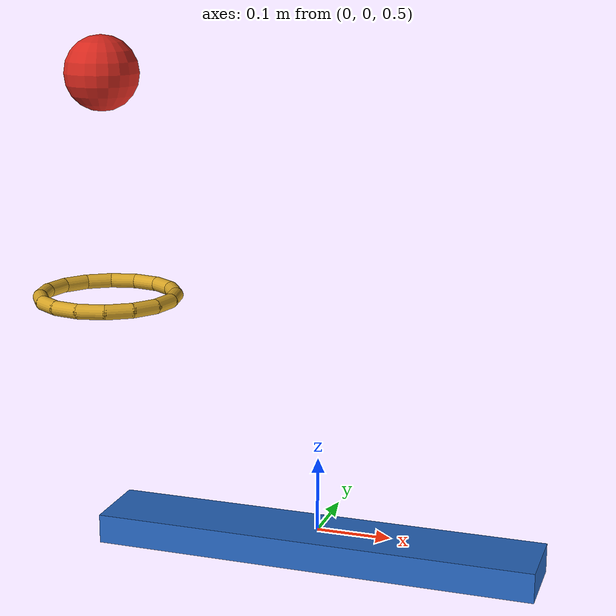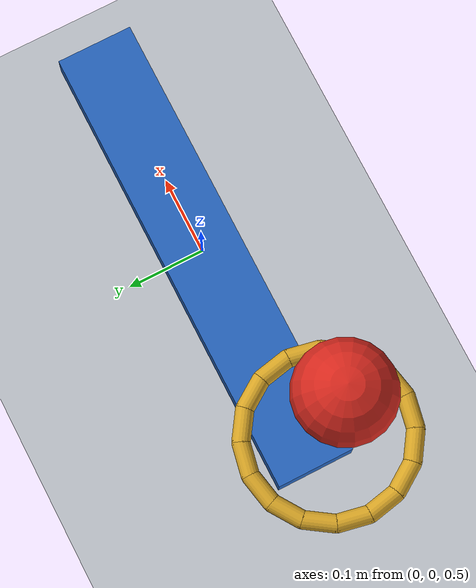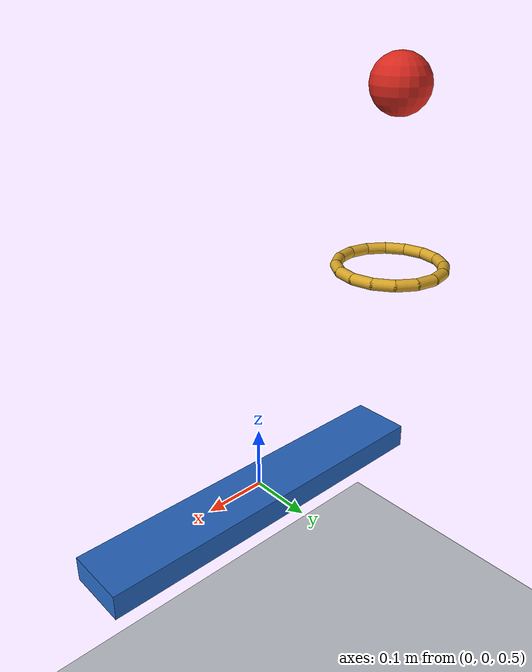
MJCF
<mujoco model="ball_ring_lever">
  <compiler angle="degree" inertiafromgeom="true"/>
  <option timestep="0.002" gravity="0 0 -9.81" integrator="implicitfast" iterations="100"/>

  <worldbody>
    <!-- Sliding friction is 0.72. Small torsional and rolling friction help the ball settle. -->
    <geom name="floor" type="plane" pos="0 0 0" size="3 3 0.1" friction="0.72 0.005 0.005" condim="6" solref="0.008 0.71565" solimp="0.95 0.95 0.001" rgba="0.75 0.77 0.80 1"/>

    <!-- Initial ball center is 0.30 m above the ring's horizontal midplane. -->
    <body name="ball1" pos="-0.30 0 1.10">
      <freejoint name="ball1_free"/>
      <geom name="ball1_sphere" type="sphere" size="0.05" mass="0.20" friction="0.72 0.005 0.005" condim="6" solref="0.008 0.71565" solimp="0.95 0.95 0.001" rgba="0.85 0.16 0.12 1"/>
    </body>

    <!--
      Fixed horizontal ring made from sixteen capsule segments.
      The centerline polygon has apothem 0.09 m; capsule radius is
      0.01 m, giving a minimum clear diameter of 0.16 m.
    -->
    <body name="ring1" pos="-0.30 0 0.80">
      <geom name="ring1_segment01" type="capsule" fromto="0.091763204 0 0 0.084778146 0.035116258 0" size="0.01" friction="0.72 0.005 0.005" condim="6" solref="0.008 0.71565" solimp="0.95 0.95 0.001" rgba="0.85 0.65 0.15 1"/>
      <geom name="ring1_segment02" type="capsule" fromto="0.084778146 0.035116258 0 0.064886384 0.064886384 0" size="0.01" friction="0.72 0.005 0.005" condim="6" solref="0.008 0.71565" solimp="0.95 0.95 0.001" rgba="0.85 0.65 0.15 1"/>
      <geom name="ring1_segment03" type="capsule" fromto="0.064886384 0.064886384 0 0.035116258 0.084778146 0" size="0.01" friction="0.72 0.005 0.005" condim="6" solref="0.008 0.71565" solimp="0.95 0.95 0.001" rgba="0.85 0.65 0.15 1"/>
      <geom name="ring1_segment04" type="capsule" fromto="0.035116258 0.084778146 0 0 0.091763204 0" size="0.01" friction="0.72 0.005 0.005" condim="6" solref="0.008 0.71565" solimp="0.95 0.95 0.001" rgba="0.85 0.65 0.15 1"/>
      <geom name="ring1_segment05" type="capsule" fromto="0 0.091763204 0 -0.035116258 0.084778146 0" size="0.01" friction="0.72 0.005 0.005" condim="6" solref="0.008 0.71565" solimp="0.95 0.95 0.001" rgba="0.85 0.65 0.15 1"/>
      <geom name="ring1_segment06" type="capsule" fromto="-0.035116258 0.084778146 0 -0.064886384 0.064886384 0" size="0.01" friction="0.72 0.005 0.005" condim="6" solref="0.008 0.71565" solimp="0.95 0.95 0.001" rgba="0.85 0.65 0.15 1"/>
      <geom name="ring1_segment07" type="capsule" fromto="-0.064886384 0.064886384 0 -0.084778146 0.035116258 0" size="0.01" friction="0.72 0.005 0.005" condim="6" solref="0.008 0.71565" solimp="0.95 0.95 0.001" rgba="0.85 0.65 0.15 1"/>
      <geom name="ring1_segment08" type="capsule" fromto="-0.084778146 0.035116258 0 -0.091763204 0 0" size="0.01" friction="0.72 0.005 0.005" condim="6" solref="0.008 0.71565" solimp="0.95 0.95 0.001" rgba="0.85 0.65 0.15 1"/>
      <geom name="ring1_segment09" type="capsule" fromto="-0.091763204 0 0 -0.084778146 -0.035116258 0" size="0.01" friction="0.72 0.005 0.005" condim="6" solref="0.008 0.71565" solimp="0.95 0.95 0.001" rgba="0.85 0.65 0.15 1"/>
      <geom name="ring1_segment10" type="capsule" fromto="-0.084778146 -0.035116258 0 -0.064886384 -0.064886384 0" size="0.01" friction="0.72 0.005 0.005" condim="6" solref="0.008 0.71565" solimp="0.95 0.95 0.001" rgba="0.85 0.65 0.15 1"/>
      <geom name="ring1_segment11" type="capsule" fromto="-0.064886384 -0.064886384 0 -0.035116258 -0.084778146 0" size="0.01" friction="0.72 0.005 0.005" condim="6" solref="0.008 0.71565" solimp="0.95 0.95 0.001" rgba="0.85 0.65 0.15 1"/>
      <geom name="ring1_segment12" type="capsule" fromto="-0.035116258 -0.084778146 0 0 -0.091763204 0" size="0.01" friction="0.72 0.005 0.005" condim="6" solref="0.008 0.71565" solimp="0.95 0.95 0.001" rgba="0.85 0.65 0.15 1"/>
      <geom name="ring1_segment13" type="capsule" fromto="0 -0.091763204 0 0.035116258 -0.084778146 0" size="0.01" friction="0.72 0.005 0.005" condim="6" solref="0.008 0.71565" solimp="0.95 0.95 0.001" rgba="0.85 0.65 0.15 1"/>
      <geom name="ring1_segment14" type="capsule" fromto="0.035116258 -0.084778146 0 0.064886384 -0.064886384 0" size="0.01" friction="0.72 0.005 0.005" condim="6" solref="0.008 0.71565" solimp="0.95 0.95 0.001" rgba="0.85 0.65 0.15 1"/>
      <geom name="ring1_segment15" type="capsule" fromto="0.064886384 -0.064886384 0 0.084778146 -0.035116258 0" size="0.01" friction="0.72 0.005 0.005" condim="6" solref="0.008 0.71565" solimp="0.95 0.95 0.001" rgba="0.85 0.65 0.15 1"/>
      <geom name="ring1_segment16" type="capsule" fromto="0.084778146 -0.035116258 0 0.091763204 0 0" size="0.01" friction="0.72 0.005 0.005" condim="6" solref="0.008 0.71565" solimp="0.95 0.95 0.001" rgba="0.85 0.65 0.15 1"/>
    </body>

    <body name="lever1" pos="0 0 0.48">
      <joint name="lever1_hinge" type="hinge" pos="0 0 0" axis="0 1 0" damping="0.04" limited="true" range="-25 25" solreflimit="0.008 1"/>
      <geom name="lever1_bar" type="box" size="0.30 0.05 0.02" mass="0.50" friction="0.72 0.005 0.005" condim="6" solref="0.008 0.71565" solimp="0.95 0.95 0.001" rgba="0.15 0.40 0.75 1"/>
    </body>
  </worldbody>

  <!-- Ball translation, ball quaternion, lever angle; all velocities are zero. -->
  <keyframe>
    <key name="start" time="0" qpos="-0.30 0 1.10 1 0 0 0 0" qvel="0 0 0 0 0 0 0"/>
  </keyframe>
</mujoco>
